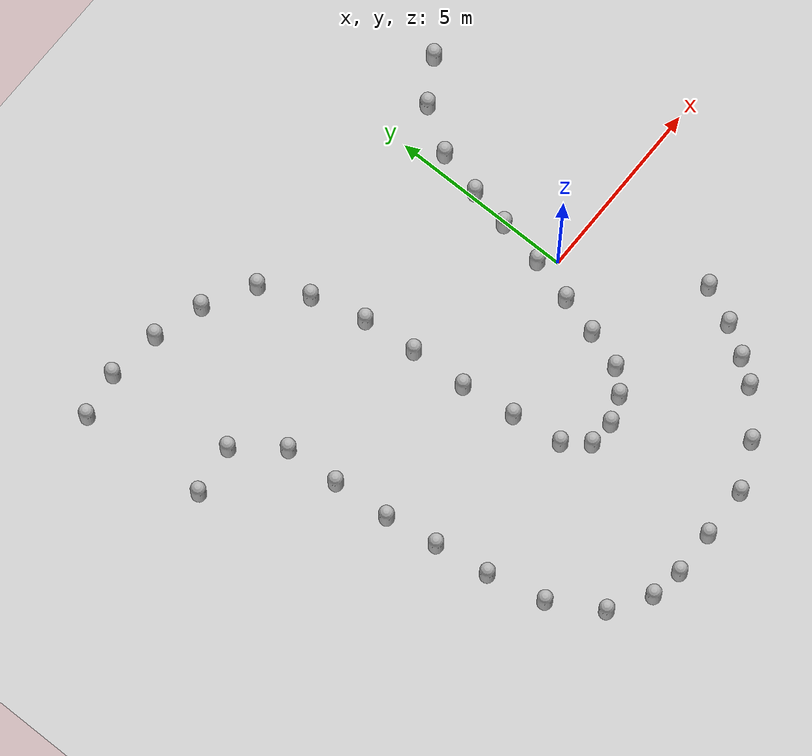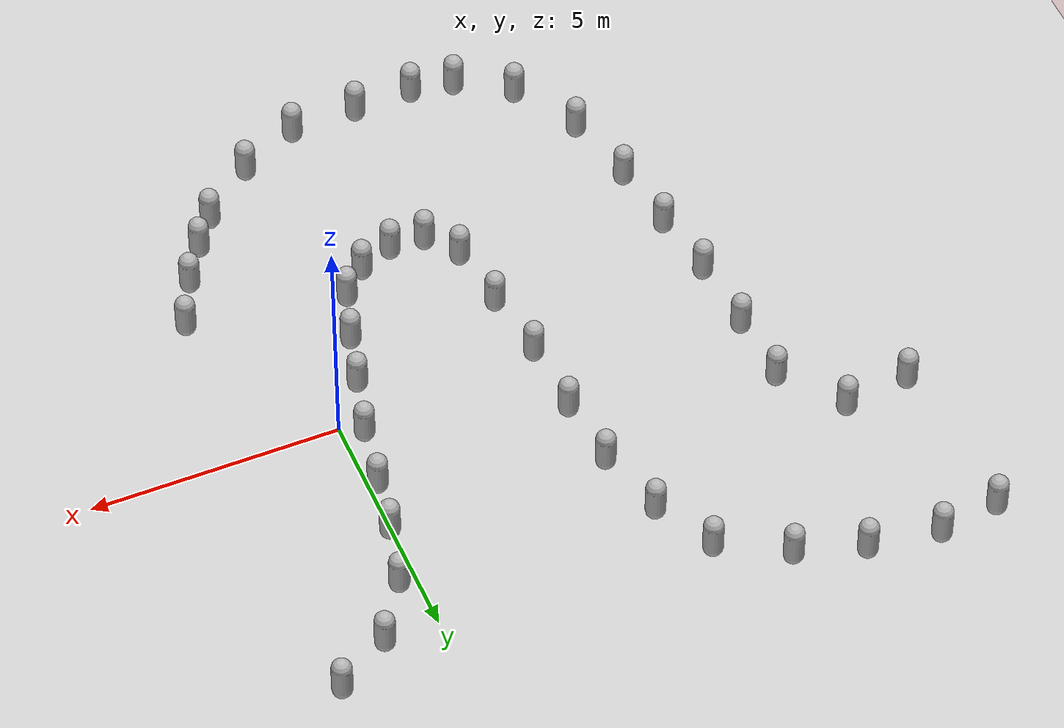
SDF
<sdf version="1.10">
 <world name="empty">
  <model name="ground_plane">
   <static>true</static>
   <link name="link">
    <collision name="collision">
     <geometry><plane><normal>0 0 1</normal><size>100 100</size></plane></geometry>
    </collision>
    <visual name="visual">
     <geometry><plane><normal>0 0 1</normal><size>100 100</size></plane></geometry>
     <material>
      <ambient>0.800000012 0.800000012 0.800000012 1</ambient>
      <diffuse>0.800000012 0.800000012 0.800000012 1</diffuse>
      <specular>0.800000012 0.800000012 0.800000012 1</specular>
     </material>
    </visual>
    <inertial>
     <mass>1</mass>
     <inertia><ixx>1</ixx><ixy>0</ixy><ixz>0</ixz><iyy>1</iyy><iyz>0</iyz><izz>1</izz></inertia>
    </inertial>
   </link>
  </model>
  <model name="capsule_22">
   <pose>2.2410211586859279 5.8455925256962518 0.49999999961384473 0 0 0</pose>
   <link name="capsule_link">
    <inertial>
     <inertia>
      <ixx>0.074153999999999998</ixx>
      <ixy>0</ixy>
      <ixz>0</ixz>
      <iyy>0.074153999999999998</iyy>
      <iyz>0</iyz>
      <izz>0.018769000000000001</izz>
     </inertia>
     <mass>1</mass>
    </inertial>
    <collision name="capsule_collision">
     <geometry>
      <capsule><radius>0.20000000000000001</radius><length>0.59999999999999998</length></capsule>
     </geometry>
    </collision>
    <visual name="capsule_visual">
     <geometry>
      <capsule><radius>0.20000000000000001</radius><length>0.59999999999999998</length></capsule>
     </geometry>
     <material>
      <ambient>0.300000012 0.300000012 0.300000012 1</ambient>
      <diffuse>0.699999988 0.699999988 0.699999988 1</diffuse>
      <specular>1 1 1 1</specular>
     </material>
    </visual>
   </link>
   <static>false</static>
  </model>
  <model name="capsule_23">
   <pose>1.1205332928616789 5.148689651645503 0.49999999961384473 0 0 0</pose>
   <link name="capsule_link">
    <inertial>
     <inertia>
      <ixx>0.074153999999999998</ixx>
      <ixy>0</ixy>
      <ixz>0</ixz>
      <iyy>0.074153999999999998</iyy>
      <iyz>0</iyz>
      <izz>0.018769000000000001</izz>
     </inertia>
     <mass>1</mass>
    </inertial>
    <collision name="capsule_collision">
     <geometry>
      <capsule><radius>0.20000000000000001</radius><length>0.59999999999999998</length></capsule>
     </geometry>
    </collision>
    <visual name="capsule_visual">
     <geometry>
      <capsule><radius>0.20000000000000001</radius><length>0.59999999999999998</length></capsule>
     </geometry>
     <material>
      <ambient>0.300000012 0.300000012 0.300000012 1</ambient>
      <diffuse>0.699999988 0.699999988 0.699999988 1</diffuse>
      <specular>1 1 1 1</specular>
     </material>
    </visual>
   </link>
   <static>false</static>
  </model>
  <model name="capsule_24">
   <pose>0.36715474724769592 3.9862101078033447 0.49999999980498194 0 0 0</pose>
   <link name="capsule_link">
    <inertial>
     <inertia>
      <ixx>0.074153999999999998</ixx>
      <ixy>0</ixy>
      <ixz>0</ixz>
      <iyy>0.074153999999999998</iyy>
      <iyz>0</iyz>
      <izz>0.018769000000000001</izz>
     </inertia>
     <mass>1</mass>
    </inertial>
    <collision name="capsule_collision">
     <geometry>
      <capsule><radius>0.20000000000000001</radius><length>0.59999999999999998</length></capsule>
     </geometry>
    </collision>
    <visual name="capsule_visual">
     <geometry>
      <capsule><radius>0.20000000000000001</radius><length>0.59999999999999998</length></capsule>
     </geometry>
     <material>
      <ambient>0.300000012 0.300000012 0.300000012 1</ambient>
      <diffuse>0.699999988 0.699999988 0.699999988 1</diffuse>
      <specular>1 1 1 1</specular>
     </material>
    </visual>
   </link>
   <static>false</static>
  </model>
  <model name="capsule_25">
   <pose>0.054870724678039551 2.7515799999237061 0.49999999980498194 0 0 0</pose>
   <link name="capsule_link">
    <inertial>
     <inertia>
      <ixx>0.074153999999999998</ixx>
      <ixy>0</ixy>
      <ixz>0</ixz>
      <iyy>0.074153999999999998</iyy>
      <iyz>0</iyz>
      <izz>0.018769000000000001</izz>
     </inertia>
     <mass>1</mass>
    </inertial>
    <collision name="capsule_collision">
     <geometry>
      <capsule><radius>0.20000000000000001</radius><length>0.59999999999999998</length></capsule>
     </geometry>
    </collision>
    <visual name="capsule_visual">
     <geometry>
      <capsule><radius>0.20000000000000001</radius><length>0.59999999999999998</length></capsule>
     </geometry>
     <material>
      <ambient>0.300000012 0.300000012 0.300000012 1</ambient>
      <diffuse>0.699999988 0.699999988 0.699999988 1</diffuse>
      <specular>1 1 1 1</specular>
     </material>
    </visual>
   </link>
   <static>false</static>
  </model>
  <model name="capsule_26">
   <pose>-0.14112371206283569 1.6486799716949463 0.49999999980498194 0 0 0</pose>
   <link name="capsule_link">
    <inertial>
     <inertia>
      <ixx>0.074153999999999998</ixx>
      <ixy>0</ixy>
      <ixz>0</ixz>
      <iyy>0.074153999999999998</iyy>
      <iyz>0</iyz>
      <izz>0.018769000000000001</izz>
     </inertia>
     <mass>1</mass>
    </inertial>
    <collision name="capsule_collision">
     <geometry>
      <capsule><radius>0.20000000000000001</radius><length>0.59999999999999998</length></capsule>
     </geometry>
    </collision>
    <visual name="capsule_visual">
     <geometry>
      <capsule><radius>0.20000000000000001</radius><length>0.59999999999999998</length></capsule>
     </geometry>
     <material>
      <ambient>0.300000012 0.300000012 0.300000012 1</ambient>
      <diffuse>0.699999988 0.699999988 0.699999988 1</diffuse>
      <specular>1 1 1 1</specular>
     </material>
    </visual>
   </link>
   <static>false</static>
  </model>
  <model name="capsule_33">
   <pose>-3.7359690886875785 -3.0206758947746262 0.49999999961384473 0 0 0</pose>
   <link name="capsule_link">
    <inertial>
     <inertia>
      <ixx>0.074153999999999998</ixx>
      <ixy>0</ixy>
      <ixz>0</ixz>
      <iyy>0.074153999999999998</iyy>
      <iyz>0</iyz>
      <izz>0.018769000000000001</izz>
     </inertia>
     <mass>1</mass>
    </inertial>
    <collision name="capsule_collision">
     <geometry>
      <capsule><radius>0.20000000000000001</radius><length>0.59999999999999998</length></capsule>
     </geometry>
    </collision>
    <visual name="capsule_visual">
     <geometry>
      <capsule><radius>0.20000000000000001</radius><length>0.59999999999999998</length></capsule>
     </geometry>
     <material>
      <ambient>0.300000012 0.300000012 0.300000012 1</ambient>
      <diffuse>0.699999988 0.699999988 0.699999988 1</diffuse>
      <specular>1 1 1 1</specular>
     </material>
    </visual>
   </link>
   <static>false</static>
  </model>
  <model name="capsule_34">
   <pose>-3.9136007308902969 -1.6616885756400075 0.49999999961384473 0 0 0</pose>
   <link name="capsule_link">
    <inertial>
     <inertia>
      <ixx>0.074153999999999998</ixx>
      <ixy>0</ixy>
      <ixz>0</ixz>
      <iyy>0.074153999999999998</iyy>
      <iyz>0</iyz>
      <izz>0.018769000000000001</izz>
     </inertia>
     <mass>1</mass>
    </inertial>
    <collision name="capsule_collision">
     <geometry>
      <capsule><radius>0.20000000000000001</radius><length>0.59999999999999998</length></capsule>
     </geometry>
    </collision>
    <visual name="capsule_visual">
     <geometry>
      <capsule><radius>0.20000000000000001</radius><length>0.59999999999999998</length></capsule>
     </geometry>
     <material>
      <ambient>0.300000012 0.300000012 0.300000012 1</ambient>
      <diffuse>0.699999988 0.699999988 0.699999988 1</diffuse>
      <specular>1 1 1 1</specular>
     </material>
    </visual>
   </link>
   <static>false</static>
  </model>
  <model name="capsule_35">
   <pose>-4.111023931562845 -0.20660173922643699 0.49999999961384473 0 0 0</pose>
   <link name="capsule_link">
    <inertial>
     <inertia>
      <ixx>0.074153999999999998</ixx>
      <ixy>0</ixy>
      <ixz>0</ixz>
      <iyy>0.074153999999999998</iyy>
      <iyz>0</iyz>
      <izz>0.018769000000000001</izz>
     </inertia>
     <mass>1</mass>
    </inertial>
    <collision name="capsule_collision">
     <geometry>
      <capsule><radius>0.20000000000000001</radius><length>0.59999999999999998</length></capsule>
     </geometry>
    </collision>
    <visual name="capsule_visual">
     <geometry>
      <capsule><radius>0.20000000000000001</radius><length>0.59999999999999998</length></capsule>
     </geometry>
     <material>
      <ambient>0.300000012 0.300000012 0.300000012 1</ambient>
      <diffuse>0.699999988 0.699999988 0.699999988 1</diffuse>
      <specular>1 1 1 1</specular>
     </material>
    </visual>
   </link>
   <static>false</static>
  </model>
  <model name="capsule_36">
   <pose>-4.1761549505182636 1.3268821165121976 0.49999999961384473 0 0 0</pose>
   <link name="capsule_link">
    <inertial>
     <inertia>
      <ixx>0.074153999999999998</ixx>
      <ixy>0</ixy>
      <ixz>0</ixz>
      <iyy>0.074153999999999998</iyy>
      <iyz>0</iyz>
      <izz>0.018769000000000001</izz>
     </inertia>
     <mass>1</mass>
    </inertial>
    <collision name="capsule_collision">
     <geometry>
      <capsule><radius>0.20000000000000001</radius><length>0.59999999999999998</length></capsule>
     </geometry>
    </collision>
    <visual name="capsule_visual">
     <geometry>
      <capsule><radius>0.20000000000000001</radius><length>0.59999999999999998</length></capsule>
     </geometry>
     <material>
      <ambient>0.300000012 0.300000012 0.300000012 1</ambient>
      <diffuse>0.699999988 0.699999988 0.699999988 1</diffuse>
      <specular>1 1 1 1</specular>
     </material>
    </visual>
   </link>
   <static>false</static>
  </model>
  <model name="capsule_37">
   <pose>-4.3167518290005216 2.7823156699431575 0.49999999961384473 0 0 0</pose>
   <link name="capsule_link">
    <inertial>
     <inertia>
      <ixx>0.074153999999999998</ixx>
      <ixy>0</ixy>
      <ixz>0</ixz>
      <iyy>0.074153999999999998</iyy>
      <iyz>0</iyz>
      <izz>0.018769000000000001</izz>
     </inertia>
     <mass>1</mass>
    </inertial>
    <collision name="capsule_collision">
     <geometry>
      <capsule><radius>0.20000000000000001</radius><length>0.59999999999999998</length></capsule>
     </geometry>
    </collision>
    <visual name="capsule_visual">
     <geometry>
      <capsule><radius>0.20000000000000001</radius><length>0.59999999999999998</length></capsule>
     </geometry>
     <material>
      <ambient>0.300000012 0.300000012 0.300000012 1</ambient>
      <diffuse>0.699999988 0.699999988 0.699999988 1</diffuse>
      <specular>1 1 1 1</specular>
     </material>
    </visual>
   </link>
   <static>false</static>
  </model>
  <model name="capsule_44">
   <pose>-5.3499398231506348 -7.2536706924438477 0.499999999902001 0 0 0</pose>
   <link name="capsule_link">
    <inertial>
     <inertia>
      <ixx>0.074153999999999998</ixx>
      <ixy>0</ixy>
      <ixz>0</ixz>
      <iyy>0.074153999999999998</iyy>
      <iyz>0</iyz>
      <izz>0.018769000000000001</izz>
     </inertia>
     <mass>1</mass>
    </inertial>
    <collision name="capsule_collision">
     <geometry>
      <capsule><radius>0.20000000000000001</radius><length>0.59999999999999998</length></capsule>
     </geometry>
    </collision>
    <visual name="capsule_visual">
     <geometry>
      <capsule><radius>0.20000000000000001</radius><length>0.59999999999999998</length></capsule>
     </geometry>
     <material>
      <ambient>0.300000012 0.300000012 0.300000012 1</ambient>
      <diffuse>0.699999988 0.699999988 0.699999988 1</diffuse>
      <specular>1 1 1 1</specular>
     </material>
    </visual>
   </link>
   <static>false</static>
  </model>
  <model name="capsule_45">
   <pose>-6.3835868845907884 -6.5850210009494328 0.49999999961384473 0 0 0</pose>
   <link name="capsule_link">
    <inertial>
     <inertia>
      <ixx>0.074153999999999998</ixx>
      <ixy>0</ixy>
      <ixz>0</ixz>
      <iyy>0.074153999999999998</iyy>
      <iyz>0</iyz>
      <izz>0.018769000000000001</izz>
     </inertia>
     <mass>1</mass>
    </inertial>
    <collision name="capsule_collision">
     <geometry>
      <capsule><radius>0.20000000000000001</radius><length>0.59999999999999998</length></capsule>
     </geometry>
    </collision>
    <visual name="capsule_visual">
     <geometry>
      <capsule><radius>0.20000000000000001</radius><length>0.59999999999999998</length></capsule>
     </geometry>
     <material>
      <ambient>0.300000012 0.300000012 0.300000012 1</ambient>
      <diffuse>0.699999988 0.699999988 0.699999988 1</diffuse>
      <specular>1 1 1 1</specular>
     </material>
    </visual>
   </link>
   <static>false</static>
  </model>
  <model name="capsule_46">
   <pose>-7.151202088566734 -5.24470062890338 0.49999999961384473 0 0 0</pose>
   <link name="capsule_link">
    <inertial>
     <inertia>
      <ixx>0.074153999999999998</ixx>
      <ixy>0</ixy>
      <ixz>0</ixz>
      <iyy>0.074153999999999998</iyy>
      <iyz>0</iyz>
      <izz>0.018769000000000001</izz>
     </inertia>
     <mass>1</mass>
    </inertial>
    <collision name="capsule_collision">
     <geometry>
      <capsule><radius>0.20000000000000001</radius><length>0.59999999999999998</length></capsule>
     </geometry>
    </collision>
    <visual name="capsule_visual">
     <geometry>
      <capsule><radius>0.20000000000000001</radius><length>0.59999999999999998</length></capsule>
     </geometry>
     <material>
      <ambient>0.300000012 0.300000012 0.300000012 1</ambient>
      <diffuse>0.699999988 0.699999988 0.699999988 1</diffuse>
      <specular>1 1 1 1</specular>
     </material>
    </visual>
   </link>
   <static>false</static>
  </model>
  <model name="capsule_47">
   <pose>-7.5092744102022229 -3.7053056780459031 0.49999999961384473 0 0 0</pose>
   <link name="capsule_link">
    <inertial>
     <inertia>
      <ixx>0.074153999999999998</ixx>
      <ixy>0</ixy>
      <ixz>0</ixz>
      <iyy>0.074153999999999998</iyy>
      <iyz>0</iyz>
      <izz>0.018769000000000001</izz>
     </inertia>
     <mass>1</mass>
    </inertial>
    <collision name="capsule_collision">
     <geometry>
      <capsule><radius>0.20000000000000001</radius><length>0.59999999999999998</length></capsule>
     </geometry>
    </collision>
    <visual name="capsule_visual">
     <geometry>
      <capsule><radius>0.20000000000000001</radius><length>0.59999999999999998</length></capsule>
     </geometry>
     <material>
      <ambient>0.300000012 0.300000012 0.300000012 1</ambient>
      <diffuse>0.699999988 0.699999988 0.699999988 1</diffuse>
      <specular>1 1 1 1</specular>
     </material>
    </visual>
   </link>
   <static>false</static>
  </model>
  <model name="capsule_48">
   <pose>-7.7253568550493883 -2.2453464417871847 0.49999999961384473 0 0 0</pose>
   <link name="capsule_link">
    <inertial>
     <inertia>
      <ixx>0.074153999999999998</ixx>
      <ixy>0</ixy>
      <ixz>0</ixz>
      <iyy>0.074153999999999998</iyy>
      <iyz>0</iyz>
      <izz>0.018769000000000001</izz>
     </inertia>
     <mass>1</mass>
    </inertial>
    <collision name="capsule_collision">
     <geometry>
      <capsule><radius>0.20000000000000001</radius><length>0.59999999999999998</length></capsule>
     </geometry>
    </collision>
    <visual name="capsule_visual">
     <geometry>
      <capsule><radius>0.20000000000000001</radius><length>0.59999999999999998</length></capsule>
     </geometry>
     <material>
      <ambient>0.300000012 0.300000012 0.300000012 1</ambient>
      <diffuse>0.699999988 0.699999988 0.699999988 1</diffuse>
      <specular>1 1 1 1</specular>
     </material>
    </visual>
   </link>
   <static>false</static>
  </model>
  <model name="capsule_49">
   <pose>-7.9444842494851269 -0.84214427424519833 0.49999999961384473 0 0 0</pose>
   <link name="capsule_link">
    <inertial>
     <inertia>
      <ixx>0.074153999999999998</ixx>
      <ixy>0</ixy>
      <ixz>0</ixz>
      <iyy>0.074153999999999998</iyy>
      <iyz>0</iyz>
      <izz>0.018769000000000001</izz>
     </inertia>
     <mass>1</mass>
    </inertial>
    <collision name="capsule_collision">
     <geometry>
      <capsule><radius>0.20000000000000001</radius><length>0.59999999999999998</length></capsule>
     </geometry>
    </collision>
    <visual name="capsule_visual">
     <geometry>
      <capsule><radius>0.20000000000000001</radius><length>0.59999999999999998</length></capsule>
     </geometry>
     <material>
      <ambient>0.300000012 0.300000012 0.300000012 1</ambient>
      <diffuse>0.699999988 0.699999988 0.699999988 1</diffuse>
      <specular>1 1 1 1</specular>
     </material>
    </visual>
   </link>
   <static>false</static>
  </model>
  <model name="capsule_50">
   <pose>-8.0543399608816379 0.70126440235399068 0.49999999961384473 0 0 0</pose>
   <link name="capsule_link">
    <inertial>
     <inertia>
      <ixx>0.074153999999999998</ixx>
      <ixy>0</ixy>
      <ixz>0</ixz>
      <iyy>0.074153999999999998</iyy>
      <iyz>0</iyz>
      <izz>0.018769000000000001</izz>
     </inertia>
     <mass>1</mass>
    </inertial>
    <collision name="capsule_collision">
     <geometry>
      <capsule><radius>0.20000000000000001</radius><length>0.59999999999999998</length></capsule>
     </geometry>
    </collision>
    <visual name="capsule_visual">
     <geometry>
      <capsule><radius>0.20000000000000001</radius><length>0.59999999999999998</length></capsule>
     </geometry>
     <material>
      <ambient>0.300000012 0.300000012 0.300000012 1</ambient>
      <diffuse>0.699999988 0.699999988 0.699999988 1</diffuse>
      <specular>1 1 1 1</specular>
     </material>
    </visual>
   </link>
   <static>false</static>
  </model>
  <model name="capsule_51">
   <pose>-8.133668301421551 2.1621473446861521 0.49999999961384473 0 0 0</pose>
   <link name="capsule_link">
    <inertial>
     <inertia>
      <ixx>0.074153999999999998</ixx>
      <ixy>0</ixy>
      <ixz>0</ixz>
      <iyy>0.074153999999999998</iyy>
      <iyz>0</iyz>
      <izz>0.018769000000000001</izz>
     </inertia>
     <mass>1</mass>
    </inertial>
    <collision name="capsule_collision">
     <geometry>
      <capsule><radius>0.20000000000000001</radius><length>0.59999999999999998</length></capsule>
     </geometry>
    </collision>
    <visual name="capsule_visual">
     <geometry>
      <capsule><radius>0.20000000000000001</radius><length>0.59999999999999998</length></capsule>
     </geometry>
     <material>
      <ambient>0.300000012 0.300000012 0.300000012 1</ambient>
      <diffuse>0.699999988 0.699999988 0.699999988 1</diffuse>
      <specular>1 1 1 1</specular>
     </material>
    </visual>
   </link>
   <static>false</static>
  </model>
  <model name="capsule_52">
   <pose>-9.0635232539598647 3.3592041852973571 0.49999999961384473 0 0 0</pose>
   <link name="capsule_link">
    <inertial>
     <inertia>
      <ixx>0.074153999999999998</ixx>
      <ixy>0</ixy>
      <ixz>0</ixz>
      <iyy>0.074153999999999998</iyy>
      <iyz>0</iyz>
      <izz>0.018769000000000001</izz>
     </inertia>
     <mass>1</mass>
    </inertial>
    <collision name="capsule_collision">
     <geometry>
      <capsule><radius>0.20000000000000001</radius><length>0.59999999999999998</length></capsule>
     </geometry>
    </collision>
    <visual name="capsule_visual">
     <geometry>
      <capsule><radius>0.20000000000000001</radius><length>0.59999999999999998</length></capsule>
     </geometry>
     <material>
      <ambient>0.300000012 0.300000012 0.300000012 1</ambient>
      <diffuse>0.699999988 0.699999988 0.699999988 1</diffuse>
      <specular>1 1 1 1</specular>
     </material>
    </visual>
   </link>
   <static>false</static>
  </model>
  <model name="capsule_53">
   <pose>-10.406988290166627 3.1960569281330056 0.49999999961384473 0 0 0</pose>
   <link name="capsule_link">
    <inertial>
     <inertia>
      <ixx>0.074153999999999998</ixx>
      <ixy>0</ixy>
      <ixz>0</ixz>
      <iyy>0.074153999999999998</iyy>
      <iyz>0</iyz>
      <izz>0.018769000000000001</izz>
     </inertia>
     <mass>1</mass>
    </inertial>
    <collision name="capsule_collision">
     <geometry>
      <capsule><radius>0.20000000000000001</radius><length>0.59999999999999998</length></capsule>
     </geometry>
    </collision>
    <visual name="capsule_visual">
     <geometry>
      <capsule><radius>0.20000000000000001</radius><length>0.59999999999999998</length></capsule>
     </geometry>
     <material>
      <ambient>0.300000012 0.300000012 0.300000012 1</ambient>
      <diffuse>0.699999988 0.699999988 0.699999988 1</diffuse>
      <specular>1 1 1 1</specular>
     </material>
    </visual>
   </link>
   <static>false</static>
  </model>
  <model name="capsule_54">
   <pose>-4.6987325271913631 4.2416568152282537 0.49999999961384473 0 0 0</pose>
   <link name="capsule_link">
    <inertial>
     <inertia>
      <ixx>0.074153999999999998</ixx>
      <ixy>0</ixy>
      <ixz>0</ixz>
      <iyy>0.074153999999999998</iyy>
      <iyz>0</iyz>
      <izz>0.018769000000000001</izz>
     </inertia>
     <mass>1</mass>
    </inertial>
    <collision name="capsule_collision">
     <geometry>
      <capsule><radius>0.20000000000000001</radius><length>0.59999999999999998</length></capsule>
     </geometry>
    </collision>
    <visual name="capsule_visual">
     <geometry>
      <capsule><radius>0.20000000000000001</radius><length>0.59999999999999998</length></capsule>
     </geometry>
     <material>
      <ambient>0.300000012 0.300000012 0.300000012 1</ambient>
      <diffuse>0.699999988 0.699999988 0.699999988 1</diffuse>
      <specular>1 1 1 1</specular>
     </material>
    </visual>
   </link>
   <static>false</static>
  </model>
  <model name="capsule_55">
   <pose>-5.3272928059358069 5.4728657916276644 0.49999999961384473 0 0 0</pose>
   <link name="capsule_link">
    <inertial>
     <inertia>
      <ixx>0.074153999999999998</ixx>
      <ixy>0</ixy>
      <ixz>0</ixz>
      <iyy>0.074153999999999998</iyy>
      <iyz>0</iyz>
      <izz>0.018769000000000001</izz>
     </inertia>
     <mass>1</mass>
    </inertial>
    <collision name="capsule_collision">
     <geometry>
      <capsule><radius>0.20000000000000001</radius><length>0.59999999999999998</length></capsule>
     </geometry>
    </collision>
    <visual name="capsule_visual">
     <geometry>
      <capsule><radius>0.20000000000000001</radius><length>0.59999999999999998</length></capsule>
     </geometry>
     <material>
      <ambient>0.300000012 0.300000012 0.300000012 1</ambient>
      <diffuse>0.699999988 0.699999988 0.699999988 1</diffuse>
      <specular>1 1 1 1</specular>
     </material>
    </visual>
   </link>
   <static>false</static>
  </model>
  <model name="capsule_56">
   <pose>-6.6353722595975215 6.219936998346852 0.49999999961384473 0 0 0</pose>
   <link name="capsule_link">
    <inertial>
     <inertia>
      <ixx>0.074153999999999998</ixx>
      <ixy>0</ixy>
      <ixz>0</ixz>
      <iyy>0.074153999999999998</iyy>
      <iyz>0</iyz>
      <izz>0.018769000000000001</izz>
     </inertia>
     <mass>1</mass>
    </inertial>
    <collision name="capsule_collision">
     <geometry>
      <capsule><radius>0.20000000000000001</radius><length>0.59999999999999998</length></capsule>
     </geometry>
    </collision>
    <visual name="capsule_visual">
     <geometry>
      <capsule><radius>0.20000000000000001</radius><length>0.59999999999999998</length></capsule>
     </geometry>
     <material>
      <ambient>0.300000012 0.300000012 0.300000012 1</ambient>
      <diffuse>0.699999988 0.699999988 0.699999988 1</diffuse>
      <specular>1 1 1 1</specular>
     </material>
    </visual>
   </link>
   <static>false</static>
  </model>
  <model name="capsule_57">
   <pose>-7.9635487807413075 6.63476376183496 0.49999999961384473 0 0 0</pose>
   <link name="capsule_link">
    <inertial>
     <inertia>
      <ixx>0.074153999999999998</ixx>
      <ixy>0</ixy>
      <ixz>0</ixz>
      <iyy>0.074153999999999998</iyy>
      <iyz>0</iyz>
      <izz>0.018769000000000001</izz>
     </inertia>
     <mass>1</mass>
    </inertial>
    <collision name="capsule_collision">
     <geometry>
      <capsule><radius>0.20000000000000001</radius><length>0.59999999999999998</length></capsule>
     </geometry>
    </collision>
    <visual name="capsule_visual">
     <geometry>
      <capsule><radius>0.20000000000000001</radius><length>0.59999999999999998</length></capsule>
     </geometry>
     <material>
      <ambient>0.300000012 0.300000012 0.300000012 1</ambient>
      <diffuse>0.699999988 0.699999988 0.699999988 1</diffuse>
      <specular>1 1 1 1</specular>
     </material>
    </visual>
   </link>
   <static>false</static>
  </model>
  <model name="capsule_58">
   <pose>-9.3985387470740029 6.8278514270354265 0.49999999961384473 0 0 0</pose>
   <link name="capsule_link">
    <inertial>
     <inertia>
      <ixx>0.074153999999999998</ixx>
      <ixy>0</ixy>
      <ixz>0</ixz>
      <iyy>0.074153999999999998</iyy>
      <iyz>0</iyz>
      <izz>0.018769000000000001</izz>
     </inertia>
     <mass>1</mass>
    </inertial>
    <collision name="capsule_collision">
     <geometry>
      <capsule><radius>0.20000000000000001</radius><length>0.59999999999999998</length></capsule>
     </geometry>
    </collision>
    <visual name="capsule_visual">
     <geometry>
      <capsule><radius>0.20000000000000001</radius><length>0.59999999999999998</length></capsule>
     </geometry>
     <material>
      <ambient>0.300000012 0.300000012 0.300000012 1</ambient>
      <diffuse>0.699999988 0.699999988 0.699999988 1</diffuse>
      <specular>1 1 1 1</specular>
     </material>
    </visual>
   </link>
   <static>false</static>
  </model>
  <model name="capsule_59">
   <pose>-10.630884424231226 6.6370643973520558 0.49999999961384473 0 0 0</pose>
   <link name="capsule_link">
    <inertial>
     <inertia>
      <ixx>0.074153999999999998</ixx>
      <ixy>0</ixy>
      <ixz>0</ixz>
      <iyy>0.074153999999999998</iyy>
      <iyz>0</iyz>
      <izz>0.018769000000000001</izz>
     </inertia>
     <mass>1</mass>
    </inertial>
    <collision name="capsule_collision">
     <geometry>
      <capsule><radius>0.20000000000000001</radius><length>0.59999999999999998</length></capsule>
     </geometry>
    </collision>
    <visual name="capsule_visual">
     <geometry>
      <capsule><radius>0.20000000000000001</radius><length>0.59999999999999998</length></capsule>
     </geometry>
     <material>
      <ambient>0.300000012 0.300000012 0.300000012 1</ambient>
      <diffuse>0.699999988 0.699999988 0.699999988 1</diffuse>
      <specular>1 1 1 1</specular>
     </material>
    </visual>
   </link>
   <static>false</static>
  </model>
  <model name="capsule_27">
   <pose>-0.38106293636721733 0.38151102855183938 0.49999999961384473 0 0 0</pose>
   <link name="capsule_link">
    <inertial>
     <inertia>
      <ixx>0.074153999999999998</ixx>
      <ixy>0</ixy>
      <ixz>0</ixz>
      <iyy>0.074153999999999998</iyy>
      <iyz>0</iyz>
      <izz>0.018769000000000001</izz>
     </inertia>
     <mass>1</mass>
    </inertial>
    <collision name="capsule_collision">
     <geometry>
      <capsule><radius>0.20000000000000001</radius><length>0.59999999999999998</length></capsule>
     </geometry>
    </collision>
    <visual name="capsule_visual">
     <geometry>
      <capsule><radius>0.20000000000000001</radius><length>0.59999999999999998</length></capsule>
     </geometry>
     <material>
      <ambient>0.300000012 0.300000012 0.300000012 1</ambient>
      <diffuse>0.699999988 0.699999988 0.699999988 1</diffuse>
      <specular>1 1 1 1</specular>
     </material>
    </visual>
   </link>
   <static>false</static>
  </model>
  <model name="capsule_0">
   <pose>-3.2514552755708119 -3.6556805278591891 0.499999999902001 0 0 0</pose>
   <link name="capsule_link">
    <inertial>
     <inertia>
      <ixx>0.074153999999999998</ixx>
      <ixy>0</ixy>
      <ixz>0</ixz>
      <iyy>0.074153999999999998</iyy>
      <iyz>0</iyz>
      <izz>0.018769000000000001</izz>
     </inertia>
     <mass>1</mass>
    </inertial>
    <collision name="capsule_collision">
     <geometry>
      <capsule><radius>0.20000000000000001</radius><length>0.59999999999999998</length></capsule>
     </geometry>
    </collision>
    <visual name="capsule_visual">
     <geometry>
      <capsule><radius>0.20000000000000001</radius><length>0.59999999999999998</length></capsule>
     </geometry>
     <material>
      <ambient>0.300000012 0.300000012 0.300000012 1</ambient>
      <diffuse>0.699999988 0.699999988 0.699999988 1</diffuse>
      <specular>1 1 1 1</specular>
     </material>
    </visual>
   </link>
   <static>false</static>
  </model>
  <model name="capsule_9">
   <pose>-0.7073473754162638 -0.80079351109138841 0.499999999902001 0 0 0</pose>
   <link name="capsule_link">
    <inertial>
     <inertia>
      <ixx>0.074153999999999998</ixx>
      <ixy>0</ixy>
      <ixz>0</ixz>
      <iyy>0.074153999999999998</iyy>
      <iyz>0</iyz>
      <izz>0.018769000000000001</izz>
     </inertia>
     <mass>1</mass>
    </inertial>
    <collision name="capsule_collision">
     <geometry>
      <capsule><radius>0.20000000000000001</radius><length>0.59999999999999998</length></capsule>
     </geometry>
    </collision>
    <visual name="capsule_visual">
     <geometry>
      <capsule><radius>0.20000000000000001</radius><length>0.59999999999999998</length></capsule>
     </geometry>
     <material>
      <ambient>0.300000012 0.300000012 0.300000012 1</ambient>
      <diffuse>0.699999988 0.699999988 0.699999988 1</diffuse>
      <specular>1 1 1 1</specular>
     </material>
    </visual>
   </link>
   <static>false</static>
  </model>
  <model name="capsule_28">
   <pose>-0.99077798616643742 -1.8579925977815743 0.499999999902001 0 0 0</pose>
   <link name="capsule_link">
    <inertial>
     <inertia>
      <ixx>0.074153999999999998</ixx>
      <ixy>0</ixy>
      <ixz>0</ixz>
      <iyy>0.074153999999999998</iyy>
      <iyz>0</iyz>
      <izz>0.018769000000000001</izz>
     </inertia>
     <mass>1</mass>
    </inertial>
    <collision name="capsule_collision">
     <geometry>
      <capsule><radius>0.20000000000000001</radius><length>0.59999999999999998</length></capsule>
     </geometry>
    </collision>
    <visual name="capsule_visual">
     <geometry>
      <capsule><radius>0.20000000000000001</radius><length>0.59999999999999998</length></capsule>
     </geometry>
     <material>
      <ambient>0.300000012 0.300000012 0.300000012 1</ambient>
      <diffuse>0.699999988 0.699999988 0.699999988 1</diffuse>
      <specular>1 1 1 1</specular>
     </material>
    </visual>
   </link>
   <static>false</static>
  </model>
  <model name="capsule_29">
   <pose>-1.3238218874867926 -2.8814566108143298 0.499999999902001 0 0 0</pose>
   <link name="capsule_link">
    <inertial>
     <inertia>
      <ixx>0.074153999999999998</ixx>
      <ixy>0</ixy>
      <ixz>0</ixz>
      <iyy>0.074153999999999998</iyy>
      <iyz>0</iyz>
      <izz>0.018769000000000001</izz>
     </inertia>
     <mass>1</mass>
    </inertial>
    <collision name="capsule_collision">
     <geometry>
      <capsule><radius>0.20000000000000001</radius><length>0.59999999999999998</length></capsule>
     </geometry>
    </collision>
    <visual name="capsule_visual">
     <geometry>
      <capsule><radius>0.20000000000000001</radius><length>0.59999999999999998</length></capsule>
     </geometry>
     <material>
      <ambient>0.300000012 0.300000012 0.300000012 1</ambient>
      <diffuse>0.699999988 0.699999988 0.699999988 1</diffuse>
      <specular>1 1 1 1</specular>
     </material>
    </visual>
   </link>
   <static>false</static>
  </model>
  <model name="capsule_30">
   <pose>-1.8460099697113037 -3.4102756977081299 0.499999999902001 0 0 0</pose>
   <link name="capsule_link">
    <inertial>
     <inertia>
      <ixx>0.074153999999999998</ixx>
      <ixy>0</ixy>
      <ixz>0</ixz>
      <iyy>0.074153999999999998</iyy>
      <iyz>0</iyz>
      <izz>0.018769000000000001</izz>
     </inertia>
     <mass>1</mass>
    </inertial>
    <collision name="capsule_collision">
     <geometry>
      <capsule><radius>0.20000000000000001</radius><length>0.59999999999999998</length></capsule>
     </geometry>
    </collision>
    <visual name="capsule_visual">
     <geometry>
      <capsule><radius>0.20000000000000001</radius><length>0.59999999999999998</length></capsule>
     </geometry>
     <material>
      <ambient>0.300000012 0.300000012 0.300000012 1</ambient>
      <diffuse>0.699999988 0.699999988 0.699999988 1</diffuse>
      <specular>1 1 1 1</specular>
     </material>
    </visual>
   </link>
   <static>false</static>
  </model>
  <model name="capsule_39">
   <pose>-2.5446300506591797 -3.688528299331665 0.499999999902001 0 0 0</pose>
   <link name="capsule_link">
    <inertial>
     <inertia>
      <ixx>0.074153999999999998</ixx>
      <ixy>0</ixy>
      <ixz>0</ixz>
      <iyy>0.074153999999999998</iyy>
      <iyz>0</iyz>
      <izz>0.018769000000000001</izz>
     </inertia>
     <mass>1</mass>
    </inertial>
    <collision name="capsule_collision">
     <geometry>
      <capsule><radius>0.20000000000000001</radius><length>0.59999999999999998</length></capsule>
     </geometry>
    </collision>
    <visual name="capsule_visual">
     <geometry>
      <capsule><radius>0.20000000000000001</radius><length>0.59999999999999998</length></capsule>
     </geometry>
     <material>
      <ambient>0.300000012 0.300000012 0.300000012 1</ambient>
      <diffuse>0.699999988 0.699999988 0.699999988 1</diffuse>
      <specular>1 1 1 1</specular>
     </material>
    </visual>
   </link>
   <static>false</static>
  </model>
  <model name="capsule_31">
   <pose>1.3554926250547794 -4.3968016111800496 0.499999999902001 0 0 0</pose>
   <link name="capsule_link">
    <inertial>
     <inertia>
      <ixx>0.074153999999999998</ixx>
      <ixy>0</ixy>
      <ixz>0</ixz>
      <iyy>0.074153999999999998</iyy>
      <iyz>0</iyz>
      <izz>0.018769000000000001</izz>
     </inertia>
     <mass>1</mass>
    </inertial>
    <collision name="capsule_collision">
     <geometry>
      <capsule><radius>0.20000000000000001</radius><length>0.59999999999999998</length></capsule>
     </geometry>
    </collision>
    <visual name="capsule_visual">
     <geometry>
      <capsule><radius>0.20000000000000001</radius><length>0.59999999999999998</length></capsule>
     </geometry>
     <material>
      <ambient>0.300000012 0.300000012 0.300000012 1</ambient>
      <diffuse>0.699999988 0.699999988 0.699999988 1</diffuse>
      <specular>1 1 1 1</specular>
     </material>
    </visual>
   </link>
   <static>false</static>
  </model>
  <model name="capsule_32">
   <pose>0.40422477839215709 -5.8004428292466201 0.499999999902001 0 0 0</pose>
   <link name="capsule_link">
    <inertial>
     <inertia>
      <ixx>0.074153999999999998</ixx>
      <ixy>0</ixy>
      <ixz>0</ixz>
      <iyy>0.074153999999999998</iyy>
      <iyz>0</iyz>
      <izz>0.018769000000000001</izz>
     </inertia>
     <mass>1</mass>
    </inertial>
    <collision name="capsule_collision">
     <geometry>
      <capsule><radius>0.20000000000000001</radius><length>0.59999999999999998</length></capsule>
     </geometry>
    </collision>
    <visual name="capsule_visual">
     <geometry>
      <capsule><radius>0.20000000000000001</radius><length>0.59999999999999998</length></capsule>
     </geometry>
     <material>
      <ambient>0.300000012 0.300000012 0.300000012 1</ambient>
      <diffuse>0.699999988 0.699999988 0.699999988 1</diffuse>
      <specular>1 1 1 1</specular>
     </material>
    </visual>
   </link>
   <static>false</static>
  </model>
  <model name="capsule_38">
   <pose>-0.69272937272916835 -6.7160591450645164 0.499999999902001 0 0 0</pose>
   <link name="capsule_link">
    <inertial>
     <inertia>
      <ixx>0.074153999999999998</ixx>
      <ixy>0</ixy>
      <ixz>0</ixz>
      <iyy>0.074153999999999998</iyy>
      <iyz>0</iyz>
      <izz>0.018769000000000001</izz>
     </inertia>
     <mass>1</mass>
    </inertial>
    <collision name="capsule_collision">
     <geometry>
      <capsule><radius>0.20000000000000001</radius><length>0.59999999999999998</length></capsule>
     </geometry>
    </collision>
    <visual name="capsule_visual">
     <geometry>
      <capsule><radius>0.20000000000000001</radius><length>0.59999999999999998</length></capsule>
     </geometry>
     <material>
      <ambient>0.300000012 0.300000012 0.300000012 1</ambient>
      <diffuse>0.699999988 0.699999988 0.699999988 1</diffuse>
      <specular>1 1 1 1</specular>
     </material>
    </visual>
   </link>
   <static>false</static>
  </model>
  <model name="capsule_40">
   <pose>-1.9110070994261301 -7.3039739858016528 0.499999999902001 0 0 0</pose>
   <link name="capsule_link">
    <inertial>
     <inertia>
      <ixx>0.074153999999999998</ixx>
      <ixy>0</ixy>
      <ixz>0</ixz>
      <iyy>0.074153999999999998</iyy>
      <iyz>0</iyz>
      <izz>0.018769000000000001</izz>
     </inertia>
     <mass>1</mass>
    </inertial>
    <collision name="capsule_collision">
     <geometry>
      <capsule><radius>0.20000000000000001</radius><length>0.59999999999999998</length></capsule>
     </geometry>
    </collision>
    <visual name="capsule_visual">
     <geometry>
      <capsule><radius>0.20000000000000001</radius><length>0.59999999999999998</length></capsule>
     </geometry>
     <material>
      <ambient>0.300000012 0.300000012 0.300000012 1</ambient>
      <diffuse>0.699999988 0.699999988 0.699999988 1</diffuse>
      <specular>1 1 1 1</specular>
     </material>
    </visual>
   </link>
   <static>false</static>
  </model>
  <model name="capsule_40_1">
   <pose>-3.2723818877065343 -7.3522875642709629 0.499999999902001 0 0 0</pose>
   <link name="capsule_link">
    <inertial>
     <inertia>
      <ixx>0.074153999999999998</ixx>
      <ixy>0</ixy>
      <ixz>0</ixz>
      <iyy>0.074153999999999998</iyy>
      <iyz>0</iyz>
      <izz>0.018769000000000001</izz>
     </inertia>
     <mass>1</mass>
    </inertial>
    <collision name="capsule_collision">
     <geometry>
      <capsule><radius>0.20000000000000001</radius><length>0.59999999999999998</length></capsule>
     </geometry>
    </collision>
    <visual name="capsule_visual">
     <geometry>
      <capsule><radius>0.20000000000000001</radius><length>0.59999999999999998</length></capsule>
     </geometry>
     <material>
      <ambient>0.300000012 0.300000012 0.300000012 1</ambient>
      <diffuse>0.699999988 0.699999988 0.699999988 1</diffuse>
      <specular>1 1 1 1</specular>
     </material>
    </visual>
   </link>
   <static>false</static>
  </model>
  <model name="capsule_40_2">
   <pose>-4.4809950817703683 -7.3934150857367014 0.499999999902001 0 0 0</pose>
   <link name="capsule_link">
    <inertial>
     <inertia>
      <ixx>0.074153999999999998</ixx>
      <ixy>0</ixy>
      <ixz>0</ixz>
      <iyy>0.074153999999999998</iyy>
      <iyz>0</iyz>
      <izz>0.018769000000000001</izz>
     </inertia>
     <mass>1</mass>
    </inertial>
    <collision name="capsule_collision">
     <geometry>
      <capsule><radius>0.20000000000000001</radius><length>0.59999999999999998</length></capsule>
     </geometry>
    </collision>
    <visual name="capsule_visual">
     <geometry>
      <capsule><radius>0.20000000000000001</radius><length>0.59999999999999998</length></capsule>
     </geometry>
     <material>
      <ambient>0.300000012 0.300000012 0.300000012 1</ambient>
      <diffuse>0.699999988 0.699999988 0.699999988 1</diffuse>
      <specular>1 1 1 1</specular>
     </material>
    </visual>
   </link>
   <static>false</static>
  </model>
  <model name="capsule_41">
   <pose>1.8071344850064754 -3.4045094078457661 0.499999999902001 0 0 0</pose>
   <link name="capsule_link">
    <inertial>
     <inertia>
      <ixx>0.074153999999999998</ixx>
      <ixy>0</ixy>
      <ixz>0</ixz>
      <iyy>0.074153999999999998</iyy>
      <iyz>0</iyz>
      <izz>0.018769000000000001</izz>
     </inertia>
     <mass>1</mass>
    </inertial>
    <collision name="capsule_collision">
     <geometry>
      <capsule><radius>0.20000000000000001</radius><length>0.59999999999999998</length></capsule>
     </geometry>
    </collision>
    <visual name="capsule_visual">
     <geometry>
      <capsule><radius>0.20000000000000001</radius><length>0.59999999999999998</length></capsule>
     </geometry>
     <material>
      <ambient>0.300000012 0.300000012 0.300000012 1</ambient>
      <diffuse>0.699999988 0.699999988 0.699999988 1</diffuse>
      <specular>1 1 1 1</specular>
     </material>
    </visual>
   </link>
   <static>false</static>
  </model>
  <model name="capsule_42">
   <pose>0.86228963657211111 -5.1812929697586885 0.499999999902001 0 0 0</pose>
   <link name="capsule_link">
    <inertial>
     <inertia>
      <ixx>0.074153999999999998</ixx>
      <ixy>0</ixy>
      <ixz>0</ixz>
      <iyy>0.074153999999999998</iyy>
      <iyz>0</iyz>
      <izz>0.018769000000000001</izz>
     </inertia>
     <mass>1</mass>
    </inertial>
    <collision name="capsule_collision">
     <geometry>
      <capsule><radius>0.20000000000000001</radius><length>0.59999999999999998</length></capsule>
     </geometry>
    </collision>
    <visual name="capsule_visual">
     <geometry>
      <capsule><radius>0.20000000000000001</radius><length>0.59999999999999998</length></capsule>
     </geometry>
     <material>
      <ambient>0.300000012 0.300000012 0.300000012 1</ambient>
      <diffuse>0.699999988 0.699999988 0.699999988 1</diffuse>
      <specular>1 1 1 1</specular>
     </material>
    </visual>
   </link>
   <static>false</static>
  </model>
 </world>
</sdf>
